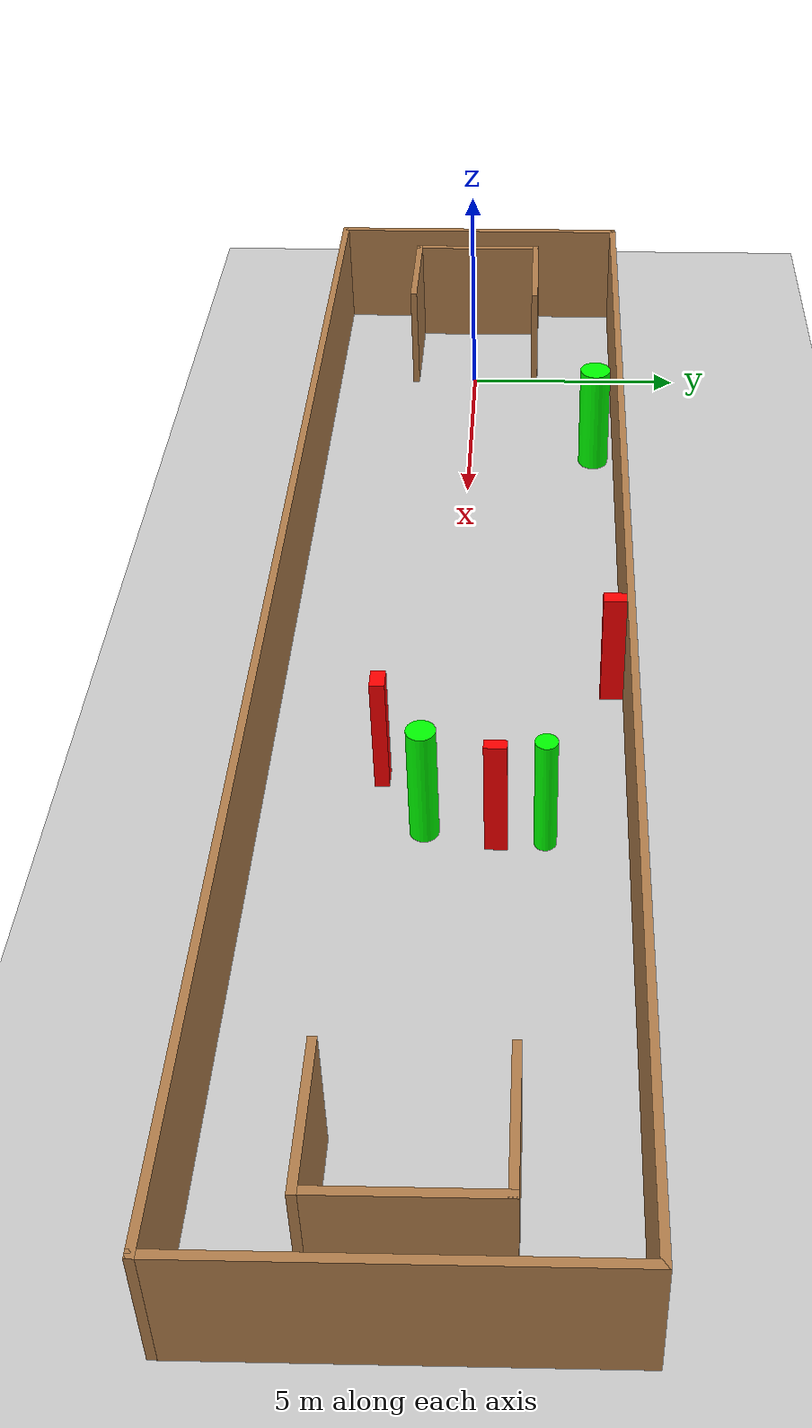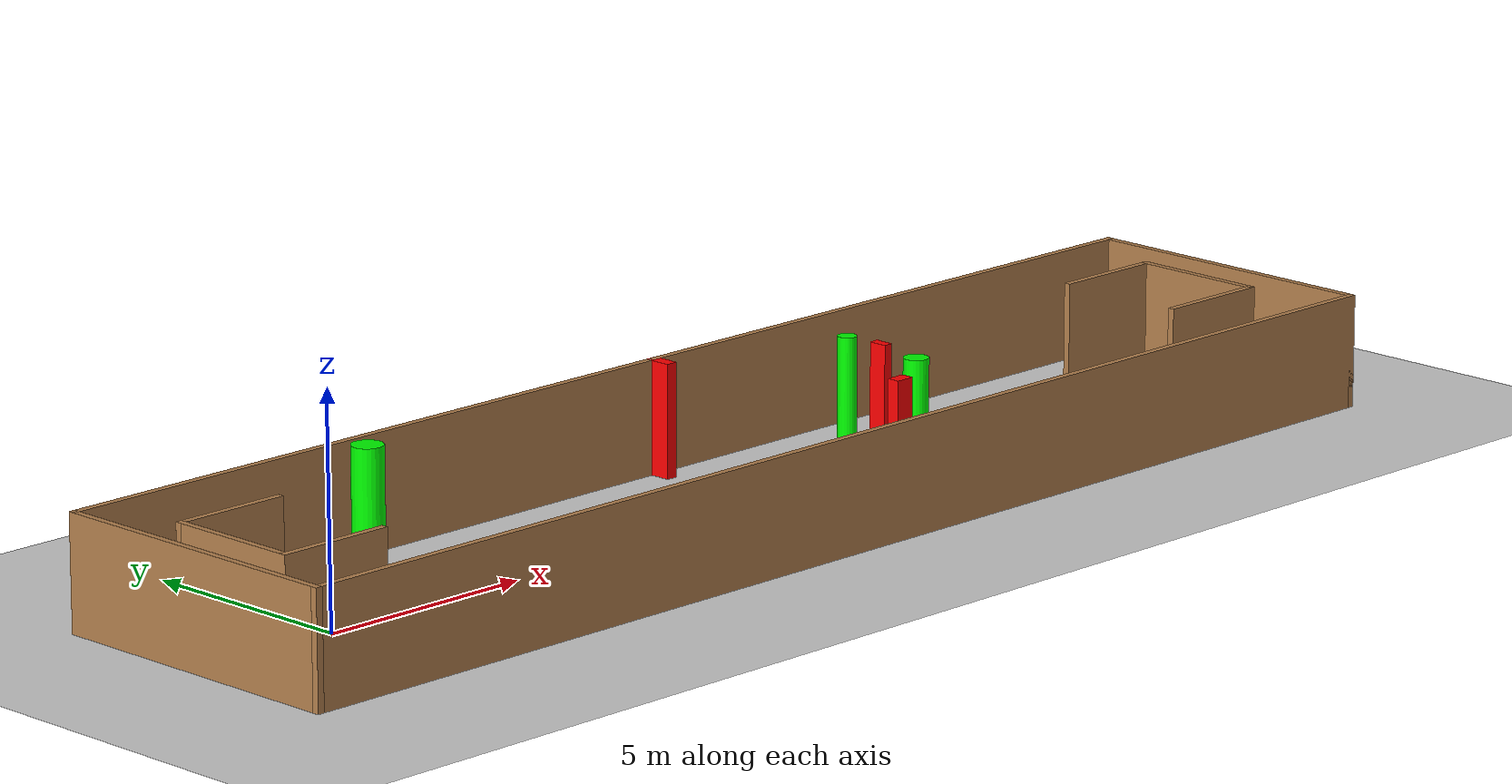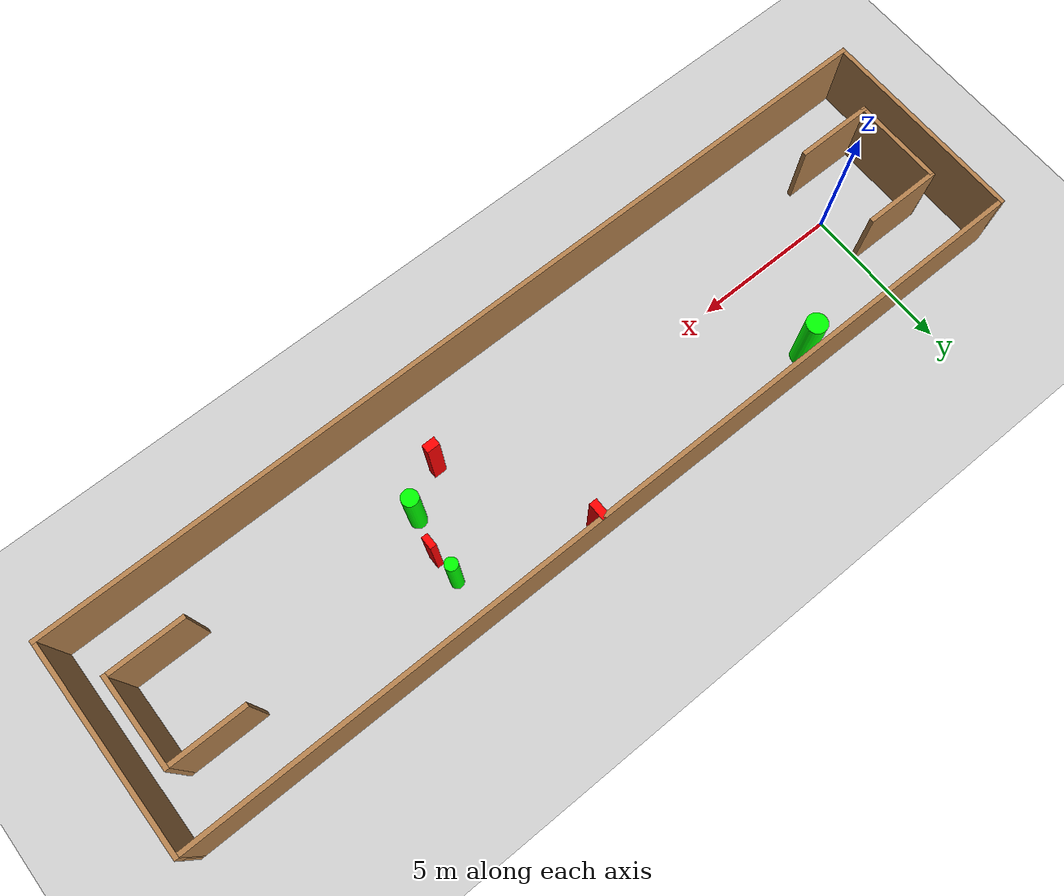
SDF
<sdf version="1.7">
 <world name="default">
  <light name="sun" type="directional">
   <pose>0 0 10 0 -0 0</pose>
   <diffuse>0.8 0.8 0.8 1</diffuse>
   <specular>0.2 0.2 0.2 1</specular>
   <attenuation>
    <range>1000</range>
    <constant>0.9</constant>
    <linear>0.01</linear>
    <quadratic>0.001</quadratic>
   </attenuation>
   <direction>-0.5 0.1 -0.9</direction>
   <spot><inner_angle>0</inner_angle><outer_angle>0</outer_angle><falloff>0</falloff></spot>
  </light>
  <model name="ground_plane">
   <static>1</static>
   <link name="link">
    <collision name="collision">
     <geometry><plane><normal>0 0 1</normal><size>100 100</size></plane></geometry>
     <surface>
      <contact><collide_bitmask>65535</collide_bitmask></contact>
      <friction><ode><mu>100</mu><mu2>50</mu2></ode></friction>
     </surface>
    </collision>
    <visual name="visual">
     <cast_shadows>0</cast_shadows>
     <geometry><plane><normal>0 0 1</normal><size>100 100</size></plane></geometry>
     <material>
      <script><uri>file://media/materials/scripts/gazebo.material</uri><name>Gazebo/Grey</name></script>
     </material>
    </visual>
   </link>
  </model>
  <gravity>0 0 -9.8</gravity>
  <magnetic_field>6e-06 2.3e-05 -4.2e-05</magnetic_field>
  <atmosphere type="adiabatic"/>
  <physics type="ode">
   <max_step_size>0.001</max_step_size>
   <real_time_factor>1</real_time_factor>
   <real_time_update_rate>1000</real_time_update_rate>
  </physics>
  <scene><ambient>0.4 0.4 0.4 1</ambient><background>0.7 0.7 0.7 1</background><shadows>1</shadows></scene>
  <spherical_coordinates>
   <surface_model>EARTH_WGS84</surface_model>
   <latitude_deg>0</latitude_deg>
   <longitude_deg>0</longitude_deg>
   <elevation>0</elevation>
   <heading_deg>0</heading_deg>
  </spherical_coordinates>
  <model name="my_base_walls">
   <link name="Wall_0">
    <collision name="Wall_0_Collision">
     <geometry><box><size>7.15 0.15 2.5</size></box></geometry>
     <pose>0 0 1.25 0 -0 0</pose>
    </collision>
    <visual name="Wall_0_Visual">
     <pose>0 0 1.25 0 -0 0</pose>
     <geometry><box><size>7.15 0.15 2.5</size></box></geometry>
     <material>
      <script><uri>file://media/materials/scripts/gazebo.material</uri><name>Gazebo/Wood</name></script>
      <ambient>1 1 1 1</ambient>
     </material>
     <meta><layer>0</layer></meta>
    </visual>
    <pose>-15 0 0 0 -0 1.5708</pose>
   </link>
   <link name="Wall_10">
    <collision name="Wall_10_Collision">
     <geometry><box><size>2.65 0.15 2.5</size></box></geometry>
     <pose>0 0 1.25 0 -0 0</pose>
    </collision>
    <visual name="Wall_10_Visual">
     <pose>0 0 1.25 0 -0 0</pose>
     <geometry><box><size>2.65 0.15 2.5</size></box></geometry>
     <material>
      <script><uri>file://media/materials/scripts/gazebo.material</uri><name>Gazebo/Wood</name></script>
      <ambient>1 1 1 1</ambient>
     </material>
     <meta><layer>0</layer></meta>
    </visual>
    <pose>-12.75 -1.5 0 0 -0 0</pose>
   </link>
   <link name="Wall_12">
    <collision name="Wall_12_Collision">
     <geometry><box><size>2.65 0.15 2.5</size></box></geometry>
     <pose>0 0 1.25 0 -0 0</pose>
    </collision>
    <visual name="Wall_12_Visual">
     <pose>0 0 1.25 0 -0 0</pose>
     <geometry><box><size>2.65 0.15 2.5</size></box></geometry>
     <material>
      <script><uri>file://media/materials/scripts/gazebo.material</uri><name>Gazebo/Wood</name></script>
      <ambient>1 1 1 1</ambient>
     </material>
     <meta><layer>0</layer></meta>
    </visual>
    <pose>-12.75 1.5 0 0 -0 0</pose>
   </link>
   <link name="Wall_14">
    <collision name="Wall_14_Collision">
     <geometry><box><size>3.15 0.15 2.5</size></box></geometry>
     <pose>0 0 1.25 0 -0 0</pose>
    </collision>
    <visual name="Wall_14_Visual">
     <pose>0 0 1.25 0 -0 0</pose>
     <geometry><box><size>3.15 0.15 2.5</size></box></geometry>
     <material>
      <script><uri>file://media/materials/scripts/gazebo.material</uri><name>Gazebo/Wood</name></script>
      <ambient>1 1 1 1</ambient>
     </material>
     <meta><layer>0</layer></meta>
    </visual>
    <pose>14 0 0 0 -0 -1.5708</pose>
   </link>
   <link name="Wall_15">
    <collision name="Wall_15_Collision">
     <geometry><box><size>2.65 0.15 2.5</size></box></geometry>
     <pose>0 0 1.25 0 -0 0</pose>
    </collision>
    <visual name="Wall_15_Visual">
     <pose>0 0 1.25 0 -0 0</pose>
     <geometry><box><size>2.65 0.15 2.5</size></box></geometry>
     <material>
      <script><uri>file://media/materials/scripts/gazebo.material</uri><name>Gazebo/Wood</name></script>
      <ambient>1 1 1 1</ambient>
     </material>
     <meta><layer>0</layer></meta>
    </visual>
    <pose>12.75 -1.5 0 0 -0 3.14159</pose>
   </link>
   <link name="Wall_17">
    <collision name="Wall_17_Collision">
     <geometry><box><size>2.65 0.15 2.5</size></box></geometry>
     <pose>0 0 1.25 0 -0 0</pose>
    </collision>
    <visual name="Wall_17_Visual">
     <pose>0 0 1.25 0 -0 0</pose>
     <geometry><box><size>2.65 0.15 2.5</size></box></geometry>
     <material>
      <script><uri>file://media/materials/scripts/gazebo.material</uri><name>Gazebo/Wood</name></script>
      <ambient>1 1 1 1</ambient>
     </material>
     <meta><layer>0</layer></meta>
    </visual>
    <pose>12.75 1.5 0 0 -0 3.14159</pose>
   </link>
   <link name="Wall_2">
    <collision name="Wall_2_Collision">
     <geometry><box><size>30.15 0.15 2.5</size></box></geometry>
     <pose>0 0 1.25 0 -0 0</pose>
    </collision>
    <visual name="Wall_2_Visual">
     <pose>0 0 1.25 0 -0 0</pose>
     <geometry><box><size>30.15 0.15 2.5</size></box></geometry>
     <material>
      <script><uri>file://media/materials/scripts/gazebo.material</uri><name>Gazebo/Wood</name></script>
      <ambient>1 1 1 1</ambient>
     </material>
     <meta><layer>0</layer></meta>
    </visual>
    <pose>-0 -3.5 0 0 -0 0</pose>
   </link>
   <link name="Wall_4">
    <collision name="Wall_4_Collision">
     <geometry><box><size>30.15 0.15 2.5</size></box></geometry>
     <pose>0 0 1.25 0 -0 0</pose>
    </collision>
    <visual name="Wall_4_Visual">
     <pose>0 0 1.25 0 -0 0</pose>
     <geometry><box><size>30.15 0.15 2.5</size></box></geometry>
     <material>
      <script><uri>file://media/materials/scripts/gazebo.material</uri><name>Gazebo/Wood</name></script>
      <ambient>1 1 1 1</ambient>
     </material>
     <meta><layer>0</layer></meta>
    </visual>
    <pose>-0 3.5 0 0 -0 0</pose>
   </link>
   <link name="Wall_6">
    <collision name="Wall_6_Collision">
     <geometry><box><size>7.15 0.15 2.5</size></box></geometry>
     <pose>0 0 1.25 0 -0 0</pose>
    </collision>
    <visual name="Wall_6_Visual">
     <pose>0 0 1.25 0 -0 0</pose>
     <geometry><box><size>7.15 0.15 2.5</size></box></geometry>
     <material>
      <script><uri>file://media/materials/scripts/gazebo.material</uri><name>Gazebo/Wood</name></script>
      <ambient>1 1 1 1</ambient>
     </material>
     <meta><layer>0</layer></meta>
    </visual>
    <pose>15 0 0 0 -0 -1.5708</pose>
   </link>
   <link name="Wall_9">
    <collision name="Wall_9_Collision">
     <geometry><box><size>3.15 0.15 2.5</size></box></geometry>
     <pose>0 0 1.25 0 -0 0</pose>
    </collision>
    <visual name="Wall_9_Visual">
     <pose>0 0 1.25 0 -0 0</pose>
     <geometry><box><size>3.15 0.15 2.5</size></box></geometry>
     <material>
      <script><uri>file://media/materials/scripts/gazebo.material</uri><name>Gazebo/Wood</name></script>
      <ambient>1 1 1 1</ambient>
     </material>
     <meta><layer>0</layer></meta>
    </visual>
    <pose>-14 0 0 0 -0 -1.5708</pose>
   </link>
   <static>1</static>
   <pose>11.5 0 0 0 -0 0</pose>
  </model>
  <model name="cylinder1">
   <static>1</static>
   <link name="link">
    <inertial>
     <mass>1</mass>
     <inertia><ixx>0.5</ixx><ixy>0</ixy><ixz>0</ixz><iyy>0.5</iyy><iyz>0</iyz><izz>1</izz></inertia>
    </inertial>
    <collision name="collision">
     <geometry><cylinder><radius>0.3452813150401889</radius><length>2.5</length></cylinder></geometry>
    </collision>
    <visual name="visual">
     <geometry><cylinder><radius>0.3452813150401889</radius><length>2.5</length></cylinder></geometry>
     <material>
      <ambient>0 1 0 1</ambient>
      <diffuse>0 1 0 1</diffuse>
      <specular>0.1 0.1 0.1 1</specular>
      <emissive>0 0 0 0</emissive>
     </material>
    </visual>
   </link>
   <pose>3.689233699861484 2.947745104293375 1.25 0 0 0</pose>
  </model>
  <model name="cylinder2">
   <static>1</static>
   <link name="link">
    <inertial>
     <mass>1</mass>
     <inertia><ixx>0.5</ixx><ixy>0</ixy><ixz>0</ixz><iyy>0.5</iyy><iyz>0</iyz><izz>1</izz></inertia>
    </inertial>
    <collision name="collision">
     <geometry><cylinder><radius>0.20924875960157197</radius><length>2.5</length></cylinder></geometry>
    </collision>
    <visual name="visual">
     <geometry><cylinder><radius>0.20924875960157197</radius><length>2.5</length></cylinder></geometry>
     <material>
      <ambient>0 1 0 1</ambient>
      <diffuse>0 1 0 1</diffuse>
      <specular>0.1 0.1 0.1 1</specular>
      <emissive>0 0 0 0</emissive>
     </material>
    </visual>
   </link>
   <pose>16.453854245036254 1.8939383427324534 1.25 0 0 0</pose>
  </model>
  <model name="cylinder3">
   <static>1</static>
   <link name="link">
    <inertial>
     <mass>1</mass>
     <inertia><ixx>0.5</ixx><ixy>0</ixy><ixz>0</ixz><iyy>0.5</iyy><iyz>0</iyz><izz>1</izz></inertia>
    </inertial>
    <collision name="collision">
     <geometry><cylinder><radius>0.27482176894102756</radius><length>2.5</length></cylinder></geometry>
    </collision>
    <visual name="visual">
     <geometry><cylinder><radius>0.27482176894102756</radius><length>2.5</length></cylinder></geometry>
     <material>
      <ambient>0 1 0 1</ambient>
      <diffuse>0 1 0 1</diffuse>
      <specular>0.1 0.1 0.1 1</specular>
      <emissive>0 0 0 0</emissive>
     </material>
    </visual>
   </link>
   <pose>16.213445909467715 -0.33192346145676765 1.25 0 0 0</pose>
  </model>
  <model name="box1">
   <static>1</static>
   <link name="link">
    <inertial>
     <mass>1</mass>
     <inertia><ixx>0.083</ixx><ixy>0</ixy><ixz>0</ixz><iyy>0.083</iyy><iyz>0</iyz><izz>0.083</izz></inertia>
    </inertial>
    <collision name="collision">
     <geometry><box><size>0.43463401900554455 0.28264050432146093 2.5</size></box></geometry>
    </collision>
    <visual name="visual">
     <geometry><box><size>0.43463401900554455 0.28264050432146093 2.5</size></box></geometry>
     <material>
      <ambient>1 0 0 1</ambient>
      <diffuse>1 0 0 1</diffuse>
      <specular>0.1 0.1 0.1 1</specular>
      <emissive>0 0 0 0</emissive>
     </material>
    </visual>
    <sensor name="my_contact" type="contact">
     <contact><collision>box_collision</collision><topic>__default_topic__</topic></contact>
    </sensor>
   </link>
   <pose>14.81636538521958 -1.20402106001242 1.25 0 0 0</pose>
  </model>
  <model name="box2">
   <static>1</static>
   <link name="link">
    <inertial>
     <mass>1</mass>
     <inertia><ixx>0.083</ixx><ixy>0</ixy><ixz>0</ixz><iyy>0.083</iyy><iyz>0</iyz><izz>0.083</izz></inertia>
    </inertial>
    <collision name="collision">
     <geometry><box><size>0.26565818288698534 0.5931116325132211 2.5</size></box></geometry>
    </collision>
    <visual name="visual">
     <geometry><box><size>0.26565818288698534 0.5931116325132211 2.5</size></box></geometry>
     <material>
      <ambient>1 0 0 1</ambient>
      <diffuse>1 0 0 1</diffuse>
      <specular>0.1 0.1 0.1 1</specular>
      <emissive>0 0 0 0</emissive>
     </material>
    </visual>
    <sensor name="my_contact" type="contact">
     <contact><collision>box_collision</collision><topic>__default_topic__</topic></contact>
    </sensor>
   </link>
   <pose>12.291812076450274 3.2622630952135383 1.25 0 0 0</pose>
  </model>
  <model name="box3">
   <static>1</static>
   <link name="link">
    <inertial>
     <mass>1</mass>
     <inertia><ixx>0.083</ixx><ixy>0</ixy><ixz>0</ixz><iyy>0.083</iyy><iyz>0</iyz><izz>0.083</izz></inertia>
    </inertial>
    <collision name="collision">
     <geometry><box><size>0.2154473069283919 0.4222557389499066 2.5</size></box></geometry>
    </collision>
    <visual name="visual">
     <geometry><box><size>0.2154473069283919 0.4222557389499066 2.5</size></box></geometry>
     <material>
      <ambient>1 0 0 1</ambient>
      <diffuse>1 0 0 1</diffuse>
      <specular>0.1 0.1 0.1 1</specular>
      <emissive>0 0 0 0</emissive>
     </material>
    </visual>
    <sensor name="my_contact" type="contact">
     <contact><collision>box_collision</collision><topic>__default_topic__</topic></contact>
    </sensor>
   </link>
   <pose>16.54542485435602 0.9961766660026496 1.25 0 0 0</pose>
  </model>
 </world>
</sdf>
